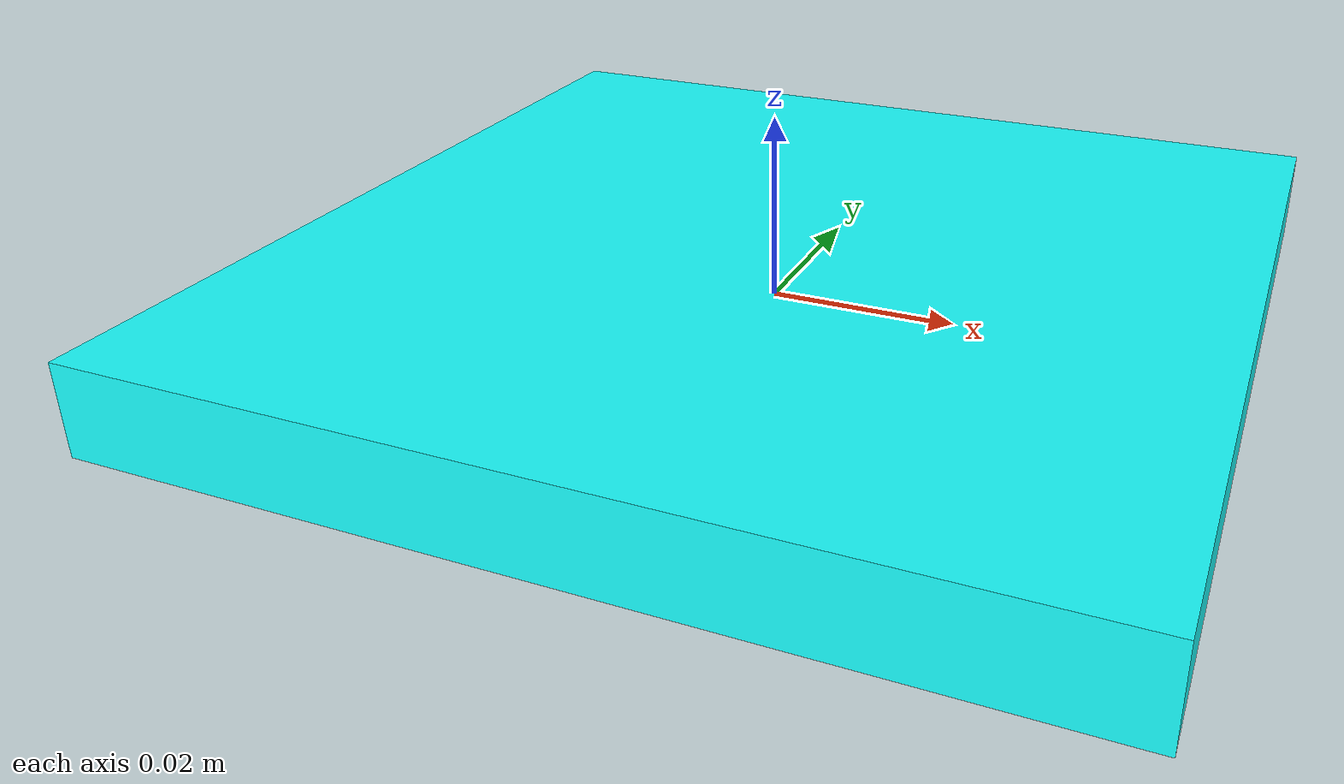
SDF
<?xml version="1.0" encoding="UTF-8"?>
<sdf version='1.9'>
  <model name='arucotag'>
    <static>true</static>
    <pose>0 0 0.001 0 0 0</pose>
    <link name='base'>
      <visual name='base_visual'>
        <geometry>
          <box>
            <size>0.1 0.1 0.01</size>
          </box>
        </geometry>
        <material>
          <diffuse>0.1 1 1 1</diffuse>
          <specular>0.4 0.4 0.4 1</specular>
          <pbr>
            <metal>
              <albedo_map>model://arucotag/aruco-25.png</albedo_map>
            </metal>
          </pbr>
        </material>
      </visual>
    </link>
  </model>
</sdf>
